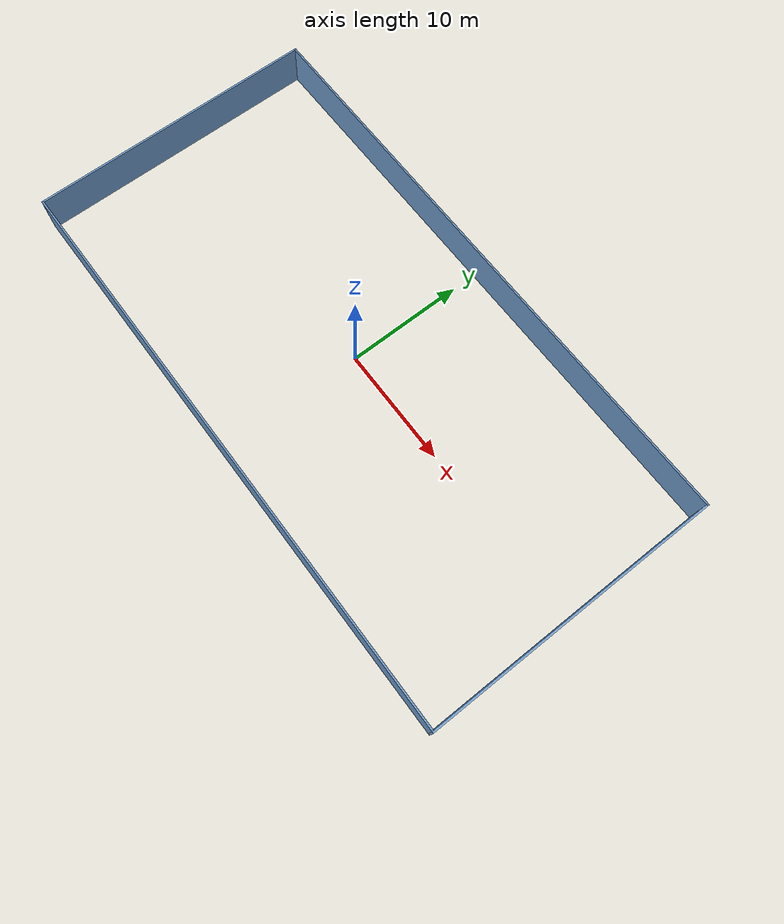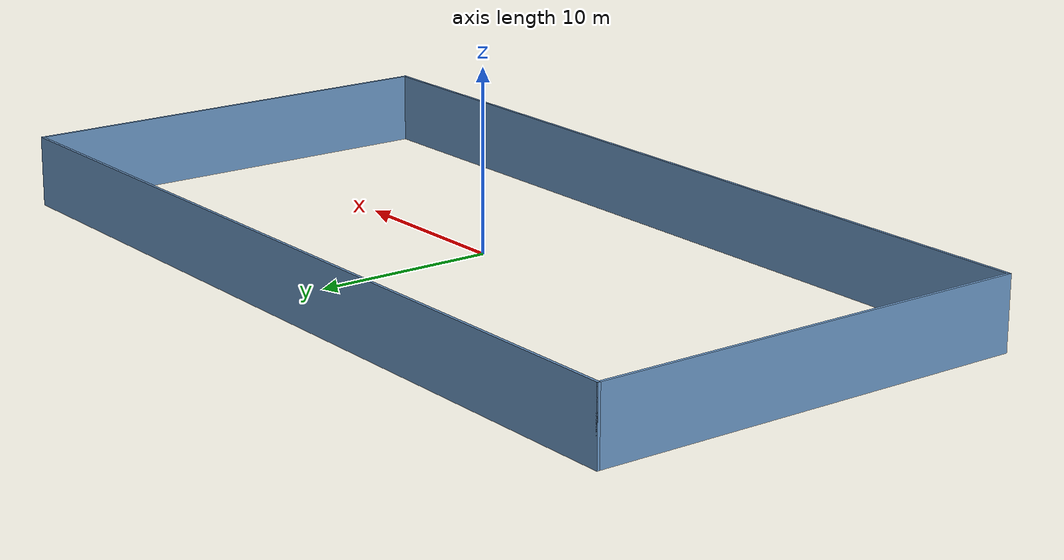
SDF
<?xml version='1.0'?>
<sdf version='1.7'>
  <model name='wall'>
    <static>true</static>
    <link name='Wall_0'>
      <pose>0 12.5 0 0 0 0</pose>
      <collision name='Wall_0_Collision'>
        <geometry>
          <box><size>50.15 0.15 4</size></box>
        </geometry>
        <pose>0 0 1 0 0 0</pose>
      </collision>
      <visual name='Wall_0_Visual'>
        <pose>0 0 1 0 0 0</pose>
        <geometry>
          <box><size>50.15 0.15 4</size></box>
        </geometry>
        <material>
          <ambient>0.44 0.62 0.81 1</ambient>
          <diffuse>0.44 0.62 0.81 1</diffuse>
          <specular>0.1 0.1 0.1 1</specular>
        </material>
      </visual>
    </link>
    <link name='Wall_2'>
      <collision name='Wall_2_Collision'>
        <geometry>
          <box><size>25.15 0.15 4</size></box>
        </geometry>
        <pose>0 0 1 0 0 0</pose>
      </collision>
      <visual name='Wall_2_Visual'>
        <pose>0 0 1 0 0 0</pose>
        <geometry>
          <box><size>25.15 0.15 4</size></box>
        </geometry>
        <material>
          <ambient>0.44 0.62 0.81 1</ambient>
          <diffuse>0.44 0.62 0.81 1</diffuse>
          <specular>0.1 0.1 0.1 1</specular>
        </material>
      </visual>
      <pose>-25 0 0 0 0 -1.5708</pose>
    </link>
    <link name='Wall_4'>
      <collision name='Wall_4_Collision'>
        <geometry>
          <box><size>25.15 0.15 4</size></box>
        </geometry>
        <pose>0 0 1 0 0 0</pose>
      </collision>
      <visual name='Wall_4_Visual'>
        <pose>0 0 1 0 0 0</pose>
        <geometry>
          <box><size>25.15 0.15 4</size></box>
        </geometry>
        <material>
          <ambient>0.44 0.62 0.81 1</ambient>
          <diffuse>0.44 0.62 0.81 1</diffuse>
          <specular >0.1 0.1 0.1 1</specular>
        </material>
      </visual>
      <pose>25 0 0 0 0 1.5708</pose>
    </link>
    <link name='Wall_6'>
      <collision name='Wall_6_Collision'>
        <geometry>
          <box><size>50.15 0.15 4</size></box>
        </geometry>
        <pose>0 0 1 0 0 0</pose>
      </collision>
      <visual name='Wall_6_Visual'>
        <pose>0 0 1 0 0 0</pose>
        <geometry>
          <box><size>50.15 0.15 4</size></box>
        </geometry>
        <material>
          <ambient>0.44 0.62 0.81 1</ambient>
          <diffuse>0.44 0.62 0.81 1</diffuse>
          <specular>0.1 0.1 0.1 1</specular>
        </material>
      </visual>
      <pose>0 -12.5 0 0 0 0</pose>
    </link>
  </model>
</sdf>
